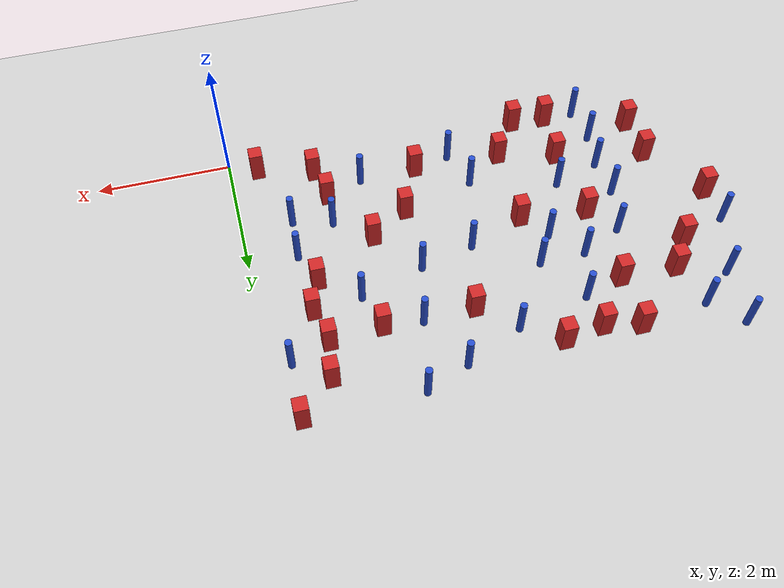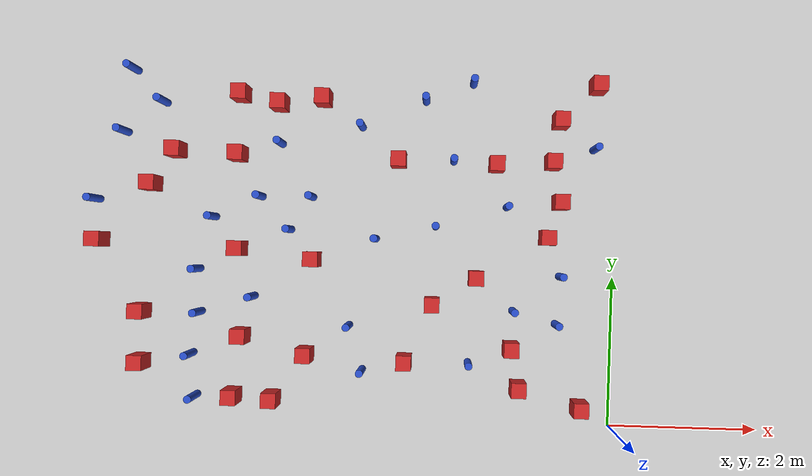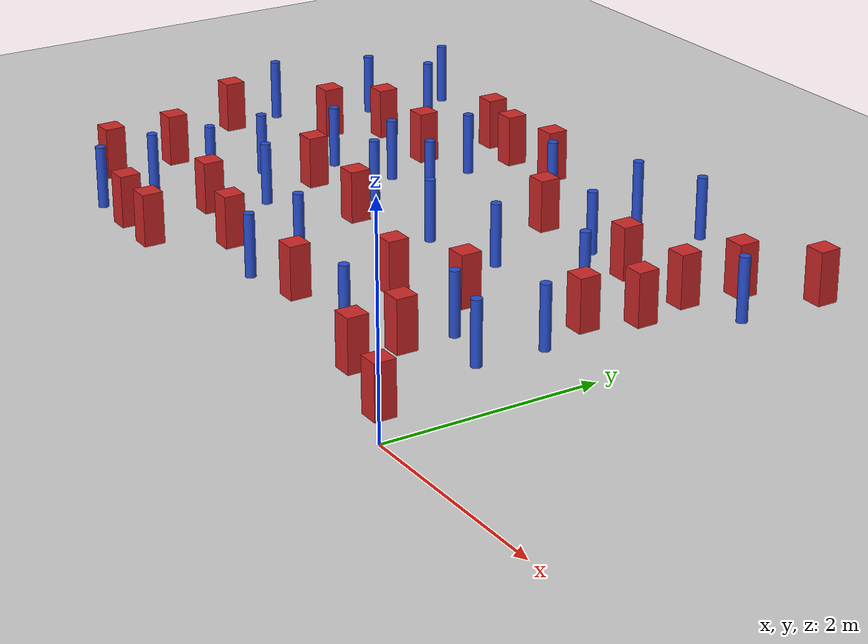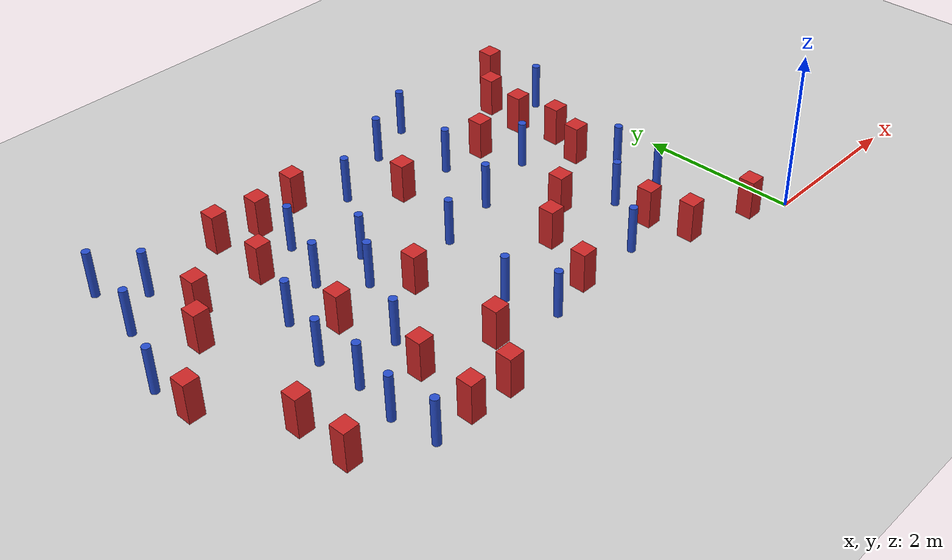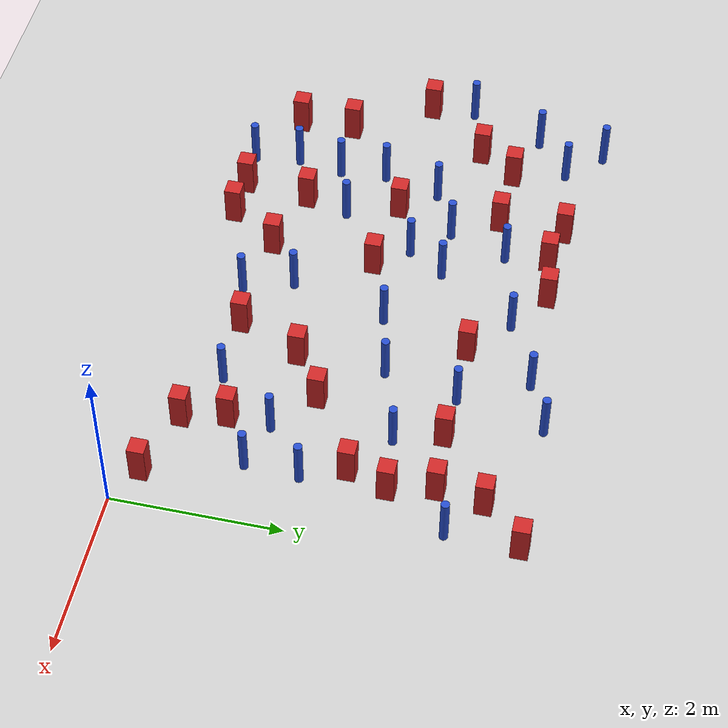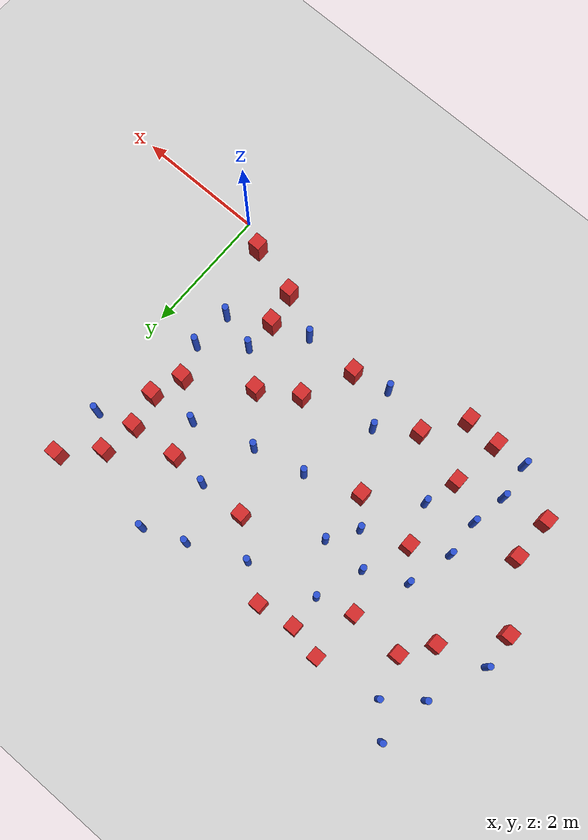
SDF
<sdf version="1.6">
 <world name="default">
  <model name="ground_plane">
   <static>1</static>
   <link name="link">
    <collision name="collision">
     <geometry><plane><normal>0 0 1</normal><size>100 100</size></plane></geometry>
     <surface><friction><ode><mu>100</mu><mu2>50</mu2></ode></friction></surface>
    </collision>
    <visual name="visual">
     <cast_shadows>0</cast_shadows>
     <geometry><plane><normal>0 0 1</normal><size>100 100</size></plane></geometry>
     <material>
      <ambient>1.0 1.0 1.0 1.0</ambient>
      <diffuse>0.8 0.8 0.8 1.0</diffuse>
      <specular>0.01 0.01 0.01 1.000000</specular>
     </material>
    </visual>
   </link>
  </model>
  <model name="pole_obstacle3">
   <static>true</static>
   <pose>-5.56863319645 0.264649890705 7.38925637345e-09 -8.47170692799e-08 1.24976765028e-08 -1.74513093019e-07</pose>
   <link name="link">
    <pose>0 0 0.3 0 -0 0</pose>
    <inertial>
     <mass>1</mass>
     <inertia><ixx>0.145833</ixx><ixy>0</ixy><ixz>0</ixz><iyy>0.145833</iyy><iyz>0</iyz><izz>0.125</izz></inertia>
    </inertial>
    <collision name="collision">
     <geometry><cylinder><radius>0.05</radius><length>.6</length></cylinder></geometry>
    </collision>
    <visual name="visual">
     <geometry><cylinder><radius>0.05</radius><length>.6</length></cylinder></geometry>
     <material>
      <script><name>Gazebo/Blue</name><uri>file://media/materials/scripts/gazebo.material</uri></script>
     </material>
    </visual>
   </link>
  </model>
  <model name="pole_obstacle4">
   <static>true</static>
   <pose>-1.33974856202 1.51738444277 7.38925637345e-09 -8.471706928e-08 1.24976765079e-08 -1.74513093017e-07</pose>
   <link name="link">
    <pose>0 0 0.3 0 -0 0</pose>
    <inertial>
     <mass>1</mass>
     <inertia><ixx>0.145833</ixx><ixy>0</ixy><ixz>0</ixz><iyy>0.145833</iyy><iyz>0</iyz><izz>0.125</izz></inertia>
    </inertial>
    <collision name="collision">
     <geometry><cylinder><radius>0.05</radius><length>.6</length></cylinder></geometry>
    </collision>
    <visual name="visual">
     <geometry><cylinder><radius>0.05</radius><length>.6</length></cylinder></geometry>
     <material>
      <script><name>Gazebo/Blue</name><uri>file://media/materials/scripts/gazebo.material</uri></script>
     </material>
    </visual>
   </link>
  </model>
  <model name="square_post_obstacle7">
   <static>true</static>
   <pose>-2.42755309524 1.5770509396 1.91545236811e-07 -7.35059704564e-06 1.12565212e-07 2.39332434364e-05</pose>
   <link name="link">
    <pose>0 0 0.25 0 -0 0</pose>
    <inertial>
     <mass>100</mass>
     <inertia>
      <ixx>0.166667</ixx>
      <ixy>0</ixy>
      <ixz>0</ixz>
      <iyy>0.166667</iyy>
      <iyz>0</iyz>
      <izz>0.166667</izz>
     </inertia>
    </inertial>
    <collision name="collision"><geometry><box><size>.2 .2 .5</size></box></geometry></collision>
    <visual name="visual">
     <geometry><box><size>.2 .2 .5</size></box></geometry>
     <material>
      <script><name>Gazebo/Red</name><uri>file://media/materials/scripts/gazebo.material</uri></script>
     </material>
    </visual>
   </link>
  </model>
  <model name="pole_obstacle13">
   <static>true</static>
   <pose>-6.49323973587 4.6111920208 7.38925637345e-09 -8.47170692796e-08 1.24976764786e-08 -1.74513093032e-07</pose>
   <link name="link">
    <pose>0 0 0.3 0 -0 0</pose>
    <inertial>
     <mass>1</mass>
     <inertia><ixx>0.145833</ixx><ixy>0</ixy><ixz>0</ixz><iyy>0.145833</iyy><iyz>0</iyz><izz>0.125</izz></inertia>
    </inertial>
    <collision name="collision">
     <geometry><cylinder><radius>0.05</radius><length>.6</length></cylinder></geometry>
    </collision>
    <visual name="visual">
     <geometry><cylinder><radius>0.05</radius><length>.6</length></cylinder></geometry>
     <material>
      <script><name>Gazebo/Blue</name><uri>file://media/materials/scripts/gazebo.material</uri></script>
     </material>
    </visual>
   </link>
  </model>
  <model name="square_post_obstacle12">
   <static>true</static>
   <pose>-2.92349941029 3.49321130569 1.91545236811e-07 -7.35059704564e-06 1.12565212e-07 2.39332434364e-05</pose>
   <link name="link">
    <pose>0 0 0.25 0 -0 0</pose>
    <inertial>
     <mass>100</mass>
     <inertia>
      <ixx>0.166667</ixx>
      <ixy>0</ixy>
      <ixz>0</ixz>
      <iyy>0.166667</iyy>
      <iyz>0</iyz>
      <izz>0.166667</izz>
     </inertia>
    </inertial>
    <collision name="collision"><geometry><box><size>.2 .2 .5</size></box></geometry></collision>
    <visual name="visual">
     <geometry><box><size>.2 .2 .5</size></box></geometry>
     <material>
      <script><name>Gazebo/Red</name><uri>file://media/materials/scripts/gazebo.material</uri></script>
     </material>
    </visual>
   </link>
  </model>
  <model name="pole_obstacle17">
   <static>true</static>
   <pose>-2.18803937398 3.50886548616 7.38925637345e-09 -8.47170692798e-08 1.24976764939e-08 -1.74513093025e-07</pose>
   <link name="link">
    <pose>0 0 0.3 0 -0 0</pose>
    <inertial>
     <mass>1</mass>
     <inertia><ixx>0.145833</ixx><ixy>0</ixy><ixz>0</ixz><iyy>0.145833</iyy><iyz>0</iyz><izz>0.125</izz></inertia>
    </inertial>
    <collision name="collision">
     <geometry><cylinder><radius>0.05</radius><length>.6</length></cylinder></geometry>
    </collision>
    <visual name="visual">
     <geometry><cylinder><radius>0.05</radius><length>.6</length></cylinder></geometry>
     <material>
      <script><name>Gazebo/Blue</name><uri>file://media/materials/scripts/gazebo.material</uri></script>
     </material>
    </visual>
   </link>
  </model>
  <model name="pole_obstacle20">
   <static>true</static>
   <pose>-2.58175912046 4.30613120905 7.38925637345e-09 -8.47170692798e-08 1.24976765033e-08 -1.74513093019e-07</pose>
   <link name="link">
    <pose>0 0 0.3 0 -0 0</pose>
    <inertial>
     <mass>1</mass>
     <inertia><ixx>0.145833</ixx><ixy>0</ixy><ixz>0</ixz><iyy>0.145833</iyy><iyz>0</iyz><izz>0.125</izz></inertia>
    </inertial>
    <collision name="collision">
     <geometry><cylinder><radius>0.05</radius><length>.6</length></cylinder></geometry>
    </collision>
    <visual name="visual">
     <geometry><cylinder><radius>0.05</radius><length>.6</length></cylinder></geometry>
     <material>
      <script><name>Gazebo/Blue</name><uri>file://media/materials/scripts/gazebo.material</uri></script>
     </material>
    </visual>
   </link>
  </model>
  <model name="pole_obstacle30">
   <static>true</static>
   <pose>-5.38350542425 2.66829200879 7.38925637345e-09 -8.47170692798e-08 1.24976764937e-08 -1.74513093023e-07</pose>
   <link name="link">
    <pose>0 0 0.3 0 -0 0</pose>
    <inertial>
     <mass>1</mass>
     <inertia><ixx>0.145833</ixx><ixy>0</ixy><ixz>0</ixz><iyy>0.145833</iyy><iyz>0</iyz><izz>0.125</izz></inertia>
    </inertial>
    <collision name="collision">
     <geometry><cylinder><radius>0.05</radius><length>.6</length></cylinder></geometry>
    </collision>
    <visual name="visual">
     <geometry><cylinder><radius>0.05</radius><length>.6</length></cylinder></geometry>
     <material>
      <script><name>Gazebo/Blue</name><uri>file://media/materials/scripts/gazebo.material</uri></script>
     </material>
    </visual>
   </link>
  </model>
  <model name="square_post_obstacle25">
   <static>true</static>
   <pose>-4.10507552067 0.86346318262 1.91545236811e-07 -7.35059704564e-06 1.12565212e-07 2.39332434364e-05</pose>
   <link name="link">
    <pose>0 0 0.25 0 -0 0</pose>
    <inertial>
     <mass>100</mass>
     <inertia>
      <ixx>0.166667</ixx>
      <ixy>0</ixy>
      <ixz>0</ixz>
      <iyy>0.166667</iyy>
      <iyz>0</iyz>
      <izz>0.166667</izz>
     </inertia>
    </inertial>
    <collision name="collision"><geometry><box><size>.2 .2 .5</size></box></geometry></collision>
    <visual name="visual">
     <geometry><box><size>.2 .2 .5</size></box></geometry>
     <material>
      <script><name>Gazebo/Red</name><uri>file://media/materials/scripts/gazebo.material</uri></script>
     </material>
    </visual>
   </link>
  </model>
  <model name="square_post_obstacle26">
   <static>true</static>
   <pose>-0.776576983941 4.07761390793 1.91545236811e-07 -7.35059704564e-06 1.12565212e-07 2.39332434364e-05</pose>
   <link name="link">
    <pose>0 0 0.25 0 -0 0</pose>
    <inertial>
     <mass>100</mass>
     <inertia>
      <ixx>0.166667</ixx>
      <ixy>0</ixy>
      <ixz>0</ixz>
      <iyy>0.166667</iyy>
      <iyz>0</iyz>
      <izz>0.166667</izz>
     </inertia>
    </inertial>
    <collision name="collision"><geometry><box><size>.2 .2 .5</size></box></geometry></collision>
    <visual name="visual">
     <geometry><box><size>.2 .2 .5</size></box></geometry>
     <material>
      <script><name>Gazebo/Red</name><uri>file://media/materials/scripts/gazebo.material</uri></script>
     </material>
    </visual>
   </link>
  </model>
  <model name="pole_obstacle34">
   <static>true</static>
   <pose>-1.45601798842 2.90968524978 7.38925637345e-09 -8.47170692799e-08 1.24976765053e-08 -1.74513093017e-07</pose>
   <link name="link">
    <pose>0 0 0.3 0 -0 0</pose>
    <inertial>
     <mass>1</mass>
     <inertia><ixx>0.145833</ixx><ixy>0</ixy><ixz>0</ixz><iyy>0.145833</iyy><iyz>0</iyz><izz>0.125</izz></inertia>
    </inertial>
    <collision name="collision">
     <geometry><cylinder><radius>0.05</radius><length>.6</length></cylinder></geometry>
    </collision>
    <visual name="visual">
     <geometry><cylinder><radius>0.05</radius><length>.6</length></cylinder></geometry>
     <material>
      <script><name>Gazebo/Blue</name><uri>file://media/materials/scripts/gazebo.material</uri></script>
     </material>
    </visual>
   </link>
  </model>
  <model name="square_post_obstacle29">
   <static>true</static>
   <pose>-6.31214828263 0.705126286664 1.91545236811e-07 -7.35059704564e-06 1.12565212e-07 2.39332434364e-05</pose>
   <link name="link">
    <pose>0 0 0.25 0 -0 0</pose>
    <inertial>
     <mass>100</mass>
     <inertia>
      <ixx>0.166667</ixx>
      <ixy>0</ixy>
      <ixz>0</ixz>
      <iyy>0.166667</iyy>
      <iyz>0</iyz>
      <izz>0.166667</izz>
     </inertia>
    </inertial>
    <collision name="collision"><geometry><box><size>.2 .2 .5</size></box></geometry></collision>
    <visual name="visual">
     <geometry><box><size>.2 .2 .5</size></box></geometry>
     <material>
      <script><name>Gazebo/Red</name><uri>file://media/materials/scripts/gazebo.material</uri></script>
     </material>
    </visual>
   </link>
  </model>
  <model name="pole_obstacle35">
   <static>true</static>
   <pose>-4.76071963337 2.95807775296 7.38925637345e-09 -8.47170692798e-08 1.24976764937e-08 -1.74513093023e-07</pose>
   <link name="link">
    <pose>0 0 0.3 0 -0 0</pose>
    <inertial>
     <mass>1</mass>
     <inertia><ixx>0.145833</ixx><ixy>0</ixy><ixz>0</ixz><iyy>0.145833</iyy><iyz>0</iyz><izz>0.125</izz></inertia>
    </inertial>
    <collision name="collision">
     <geometry><cylinder><radius>0.05</radius><length>.6</length></cylinder></geometry>
    </collision>
    <visual name="visual">
     <geometry><cylinder><radius>0.05</radius><length>.6</length></cylinder></geometry>
     <material>
      <script><name>Gazebo/Blue</name><uri>file://media/materials/scripts/gazebo.material</uri></script>
     </material>
    </visual>
   </link>
  </model>
  <model name="pole_obstacle43">
   <static>true</static>
   <pose>-1.9512212607 4.55714474681 7.38925637345e-09 -8.47170692799e-08 1.2497676507e-08 -1.74513093016e-07</pose>
   <link name="link">
    <pose>0 0 0.3 0 -0 0</pose>
    <inertial>
     <mass>1</mass>
     <inertia><ixx>0.145833</ixx><ixy>0</ixy><ixz>0</ixz><iyy>0.145833</iyy><iyz>0</iyz><izz>0.125</izz></inertia>
    </inertial>
    <collision name="collision">
     <geometry><cylinder><radius>0.05</radius><length>.6</length></cylinder></geometry>
    </collision>
    <visual name="visual">
     <geometry><cylinder><radius>0.05</radius><length>.6</length></cylinder></geometry>
     <material>
      <script><name>Gazebo/Blue</name><uri>file://media/materials/scripts/gazebo.material</uri></script>
     </material>
    </visual>
   </link>
  </model>
  <model name="pole_obstacle44">
   <static>true</static>
   <pose>-6.96015994865 2.86107015724 7.38925637345e-09 -8.47170692798e-08 1.24976764937e-08 -1.74513093023e-07</pose>
   <link name="link">
    <pose>0 0 0.3 0 -0 0</pose>
    <inertial>
     <mass>1</mass>
     <inertia><ixx>0.145833</ixx><ixy>0</ixy><ixz>0</ixz><iyy>0.145833</iyy><iyz>0</iyz><izz>0.125</izz></inertia>
    </inertial>
    <collision name="collision">
     <geometry><cylinder><radius>0.05</radius><length>.6</length></cylinder></geometry>
    </collision>
    <visual name="visual">
     <geometry><cylinder><radius>0.05</radius><length>.6</length></cylinder></geometry>
     <material>
      <script><name>Gazebo/Blue</name><uri>file://media/materials/scripts/gazebo.material</uri></script>
     </material>
    </visual>
   </link>
  </model>
  <model name="square_post_obstacle37">
   <static>true</static>
   <pose>-5.90114553127 3.54350810427 1.91545236811e-07 -7.35059704564e-06 1.12565212e-07 2.39332434364e-05</pose>
   <link name="link">
    <pose>0 0 0.25 0 -0 0</pose>
    <inertial>
     <mass>100</mass>
     <inertia>
      <ixx>0.166667</ixx>
      <ixy>0</ixy>
      <ixz>0</ixz>
      <iyy>0.166667</iyy>
      <iyz>0</iyz>
      <izz>0.166667</izz>
     </inertia>
    </inertial>
    <collision name="collision"><geometry><box><size>.2 .2 .5</size></box></geometry></collision>
    <visual name="visual">
     <geometry><box><size>.2 .2 .5</size></box></geometry>
     <material>
      <script><name>Gazebo/Red</name><uri>file://media/materials/scripts/gazebo.material</uri></script>
     </material>
    </visual>
   </link>
  </model>
  <model name="square_post_obstacle38">
   <static>true</static>
   <pose>-4.04228116823 2.13483745401 1.91545236811e-07 -7.35059704564e-06 1.12565212e-07 2.39332434364e-05</pose>
   <link name="link">
    <pose>0 0 0.25 0 -0 0</pose>
    <inertial>
     <mass>100</mass>
     <inertia>
      <ixx>0.166667</ixx>
      <ixy>0</ixy>
      <ixz>0</ixz>
      <iyy>0.166667</iyy>
      <iyz>0</iyz>
      <izz>0.166667</izz>
     </inertia>
    </inertial>
    <collision name="collision"><geometry><box><size>.2 .2 .5</size></box></geometry></collision>
    <visual name="visual">
     <geometry><box><size>.2 .2 .5</size></box></geometry>
     <material>
      <script><name>Gazebo/Red</name><uri>file://media/materials/scripts/gazebo.material</uri></script>
     </material>
    </visual>
   </link>
  </model>
  <model name="pole_obstacle51">
   <static>true</static>
   <pose>-4.07590092681 2.9698948644 7.38925637345e-09 -8.47170692798e-08 1.24976764937e-08 -1.74513093023e-07</pose>
   <link name="link">
    <pose>0 0 0.3 0 -0 0</pose>
    <inertial>
     <mass>1</mass>
     <inertia><ixx>0.145833</ixx><ixy>0</ixy><ixz>0</ixz><iyy>0.145833</iyy><iyz>0</iyz><izz>0.125</izz></inertia>
    </inertial>
    <collision name="collision">
     <geometry><cylinder><radius>0.05</radius><length>.6</length></cylinder></geometry>
    </collision>
    <visual name="visual">
     <geometry><cylinder><radius>0.05</radius><length>.6</length></cylinder></geometry>
     <material>
      <script><name>Gazebo/Blue</name><uri>file://media/materials/scripts/gazebo.material</uri></script>
     </material>
    </visual>
   </link>
  </model>
  <model name="square_post_obstacle43">
   <static>true</static>
   <pose>-1.85019754878 1.94589696726 1.91545236811e-07 -7.35059704564e-06 1.12565212e-07 2.39332434364e-05</pose>
   <link name="link">
    <pose>0 0 0.25 0 -0 0</pose>
    <inertial>
     <mass>100</mass>
     <inertia>
      <ixx>0.166667</ixx>
      <ixy>0</ixy>
      <ixz>0</ixz>
      <iyy>0.166667</iyy>
      <iyz>0</iyz>
      <izz>0.166667</izz>
     </inertia>
    </inertial>
    <collision name="collision"><geometry><box><size>.2 .2 .5</size></box></geometry></collision>
    <visual name="visual">
     <geometry><box><size>.2 .2 .5</size></box></geometry>
     <material>
      <script><name>Gazebo/Red</name><uri>file://media/materials/scripts/gazebo.material</uri></script>
     </material>
    </visual>
   </link>
  </model>
  <model name="square_post_obstacle44">
   <static>true</static>
   <pose>-6.3223014532 1.3805260691 1.91545236811e-07 -7.35059704564e-06 1.12565212e-07 2.39332434364e-05</pose>
   <link name="link">
    <pose>0 0 0.25 0 -0 0</pose>
    <inertial>
     <mass>100</mass>
     <inertia>
      <ixx>0.166667</ixx>
      <ixy>0</ixy>
      <ixz>0</ixz>
      <iyy>0.166667</iyy>
      <iyz>0</iyz>
      <izz>0.166667</izz>
     </inertia>
    </inertial>
    <collision name="collision"><geometry><box><size>.2 .2 .5</size></box></geometry></collision>
    <visual name="visual">
     <geometry><box><size>.2 .2 .5</size></box></geometry>
     <material>
      <script><name>Gazebo/Red</name><uri>file://media/materials/scripts/gazebo.material</uri></script>
     </material>
    </visual>
   </link>
  </model>
  <model name="pole_obstacle59">
   <static>true</static>
   <pose>-5.63492754478 0.827320399171 7.38925637345e-09 -8.47170692799e-08 1.24976765038e-08 -1.74513093018e-07</pose>
   <link name="link">
    <pose>0 0 0.3 0 -0 0</pose>
    <inertial>
     <mass>1</mass>
     <inertia><ixx>0.145833</ixx><ixy>0</ixy><ixz>0</ixz><iyy>0.145833</iyy><iyz>0</iyz><izz>0.125</izz></inertia>
    </inertial>
    <collision name="collision">
     <geometry><cylinder><radius>0.05</radius><length>.6</length></cylinder></geometry>
    </collision>
    <visual name="visual">
     <geometry><cylinder><radius>0.05</radius><length>.6</length></cylinder></geometry>
     <material>
      <script><name>Gazebo/Blue</name><uri>file://media/materials/scripts/gazebo.material</uri></script>
     </material>
    </visual>
   </link>
  </model>
  <model name="square_post_obstacle46">
   <static>true</static>
   <pose>-4.97036608837 1.09026584911 1.91545236811e-07 -7.35059704564e-06 1.12565212e-07 2.39332434364e-05</pose>
   <link name="link">
    <pose>0 0 0.25 0 -0 0</pose>
    <inertial>
     <mass>100</mass>
     <inertia>
      <ixx>0.166667</ixx>
      <ixy>0</ixy>
      <ixz>0</ixz>
      <iyy>0.166667</iyy>
      <iyz>0</iyz>
      <izz>0.166667</izz>
     </inertia>
    </inertial>
    <collision name="collision"><geometry><box><size>.2 .2 .5</size></box></geometry></collision>
    <visual name="visual">
     <geometry><box><size>.2 .2 .5</size></box></geometry>
     <material>
      <script><name>Gazebo/Red</name><uri>file://media/materials/scripts/gazebo.material</uri></script>
     </material>
    </visual>
   </link>
  </model>
  <model name="square_post_obstacle48">
   <static>true</static>
   <pose>-0.74768608208 2.98971172922 1.91545236811e-07 -7.35059704564e-06 1.12565212e-07 2.39332434364e-05</pose>
   <link name="link">
    <pose>0 0 0.25 0 -0 0</pose>
    <inertial>
     <mass>100</mass>
     <inertia>
      <ixx>0.166667</ixx>
      <ixy>0</ixy>
      <ixz>0</ixz>
      <iyy>0.166667</iyy>
      <iyz>0</iyz>
      <izz>0.166667</izz>
     </inertia>
    </inertial>
    <collision name="collision"><geometry><box><size>.2 .2 .5</size></box></geometry></collision>
    <visual name="visual">
     <geometry><box><size>.2 .2 .5</size></box></geometry>
     <material>
      <script><name>Gazebo/Red</name><uri>file://media/materials/scripts/gazebo.material</uri></script>
     </material>
    </visual>
   </link>
  </model>
  <model name="square_post_obstacle57">
   <static>true</static>
   <pose>-3.95077876978 4.28732311534 1.91545236811e-07 -7.35059704564e-06 1.12565212e-07 2.39332434364e-05</pose>
   <link name="link">
    <pose>0 0 0.25 0 -0 0</pose>
    <inertial>
     <mass>100</mass>
     <inertia>
      <ixx>0.166667</ixx>
      <ixy>0</ixy>
      <ixz>0</ixz>
      <iyy>0.166667</iyy>
      <iyz>0</iyz>
      <izz>0.166667</izz>
     </inertia>
    </inertial>
    <collision name="collision"><geometry><box><size>.2 .2 .5</size></box></geometry></collision>
    <visual name="visual">
     <geometry><box><size>.2 .2 .5</size></box></geometry>
     <material>
      <script><name>Gazebo/Red</name><uri>file://media/materials/scripts/gazebo.material</uri></script>
     </material>
    </visual>
   </link>
  </model>
  <model name="square_post_obstacle58">
   <static>true</static>
   <pose>-6.91479746535 2.32026566098 1.91545236811e-07 -7.35059704564e-06 1.12565212e-07 2.39332434364e-05</pose>
   <link name="link">
    <pose>0 0 0.25 0 -0 0</pose>
    <inertial>
     <mass>100</mass>
     <inertia>
      <ixx>0.166667</ixx>
      <ixy>0</ixy>
      <ixz>0</ixz>
      <iyy>0.166667</iyy>
      <iyz>0</iyz>
      <izz>0.166667</izz>
     </inertia>
    </inertial>
    <collision name="collision"><geometry><box><size>.2 .2 .5</size></box></geometry></collision>
    <visual name="visual">
     <geometry><box><size>.2 .2 .5</size></box></geometry>
     <material>
      <script><name>Gazebo/Red</name><uri>file://media/materials/scripts/gazebo.material</uri></script>
     </material>
    </visual>
   </link>
  </model>
  <model name="square_post_obstacle67">
   <static>true</static>
   <pose>-5.07187624802 3.5150816667 1.91545236811e-07 -7.35059704564e-06 1.12565212e-07 2.39332434364e-05</pose>
   <link name="link">
    <pose>0 0 0.25 0 -0 0</pose>
    <inertial>
     <mass>100</mass>
     <inertia>
      <ixx>0.166667</ixx>
      <ixy>0</ixy>
      <ixz>0</ixz>
      <iyy>0.166667</iyy>
      <iyz>0</iyz>
      <izz>0.166667</izz>
     </inertia>
    </inertial>
    <collision name="collision"><geometry><box><size>.2 .2 .5</size></box></geometry></collision>
    <visual name="visual">
     <geometry><box><size>.2 .2 .5</size></box></geometry>
     <material>
      <script><name>Gazebo/Red</name><uri>file://media/materials/scripts/gazebo.material</uri></script>
     </material>
    </visual>
   </link>
  </model>
  <model name="pole_obstacle90">
   <static>true</static>
   <pose>-1.92301351169 0.804277605014 7.38925637345e-09 -8.47170692799e-08 1.24976765075e-08 -1.74513093017e-07</pose>
   <link name="link">
    <pose>0 0 0.3 0 -0 0</pose>
    <inertial>
     <mass>1</mass>
     <inertia><ixx>0.145833</ixx><ixy>0</ixy><ixz>0</ixz><iyy>0.145833</iyy><iyz>0</iyz><izz>0.125</izz></inertia>
    </inertial>
    <collision name="collision">
     <geometry><cylinder><radius>0.05</radius><length>.6</length></cylinder></geometry>
    </collision>
    <visual name="visual">
     <geometry><cylinder><radius>0.05</radius><length>.6</length></cylinder></geometry>
     <material>
      <script><name>Gazebo/Blue</name><uri>file://media/materials/scripts/gazebo.material</uri></script>
     </material>
    </visual>
   </link>
  </model>
  <model name="square_post_obstacle89">
   <static>true</static>
   <pose>-4.5321779755 4.20644288761 1.91545236811e-07 -7.35059704564e-06 1.12565212e-07 2.39332434364e-05</pose>
   <link name="link">
    <pose>0 0 0.25 0 -0 0</pose>
    <inertial>
     <mass>100</mass>
     <inertia>
      <ixx>0.166667</ixx>
      <ixy>0</ixy>
      <ixz>0</ixz>
      <iyy>0.166667</iyy>
      <iyz>0</iyz>
      <izz>0.166667</izz>
     </inertia>
    </inertial>
    <collision name="collision"><geometry><box><size>.2 .2 .5</size></box></geometry></collision>
    <visual name="visual">
     <geometry><box><size>.2 .2 .5</size></box></geometry>
     <material>
      <script><name>Gazebo/Red</name><uri>file://media/materials/scripts/gazebo.material</uri></script>
     </material>
    </visual>
   </link>
  </model>
  <model name="pole_obstacle104">
   <static>true</static>
   <pose>-5.57584158624 1.9653769856 7.38925637345e-09 -8.471706928e-08 1.24976765177e-08 -1.74513093012e-07</pose>
   <link name="link">
    <pose>0 0 0.3 0 -0 0</pose>
    <inertial>
     <mass>1</mass>
     <inertia><ixx>0.145833</ixx><ixy>0</ixy><ixz>0</ixz><iyy>0.145833</iyy><iyz>0</iyz><izz>0.125</izz></inertia>
    </inertial>
    <collision name="collision">
     <geometry><cylinder><radius>0.05</radius><length>.6</length></cylinder></geometry>
    </collision>
    <visual name="visual">
     <geometry><cylinder><radius>0.05</radius><length>.6</length></cylinder></geometry>
     <material>
      <script><name>Gazebo/Blue</name><uri>file://media/materials/scripts/gazebo.material</uri></script>
     </material>
    </visual>
   </link>
  </model>
  <model name="square_post_obstacle100">
   <static>true</static>
   <pose>-5.04311848189 2.25108988456 1.91545236811e-07 -7.35059704564e-06 1.12565212e-07 2.39332434364e-05</pose>
   <link name="link">
    <pose>0 0 0.25 0 -0 0</pose>
    <inertial>
     <mass>100</mass>
     <inertia>
      <ixx>0.166667</ixx>
      <ixy>0</ixy>
      <ixz>0</ixz>
      <iyy>0.166667</iyy>
      <iyz>0</iyz>
      <izz>0.166667</izz>
     </inertia>
    </inertial>
    <collision name="collision"><geometry><box><size>.2 .2 .5</size></box></geometry></collision>
    <visual name="visual">
     <geometry><box><size>.2 .2 .5</size></box></geometry>
     <material>
      <script><name>Gazebo/Red</name><uri>file://media/materials/scripts/gazebo.material</uri></script>
     </material>
    </visual>
   </link>
  </model>
  <model name="square_post_obstacle109">
   <static>true</static>
   <pose>-5.06477665725 0.285330930517 1.91545236811e-07 -7.35059704564e-06 1.12565212e-07 2.39332434364e-05</pose>
   <link name="link">
    <pose>0 0 0.25 0 -0 0</pose>
    <inertial>
     <mass>100</mass>
     <inertia>
      <ixx>0.166667</ixx>
      <ixy>0</ixy>
      <ixz>0</ixz>
      <iyy>0.166667</iyy>
      <iyz>0</iyz>
      <izz>0.166667</izz>
     </inertia>
    </inertial>
    <collision name="collision"><geometry><box><size>.2 .2 .5</size></box></geometry></collision>
    <visual name="visual">
     <geometry><box><size>.2 .2 .5</size></box></geometry>
     <material>
      <script><name>Gazebo/Red</name><uri>file://media/materials/scripts/gazebo.material</uri></script>
     </material>
    </visual>
   </link>
  </model>
  <model name="pole_obstacle113">
   <static>true</static>
   <pose>-0.720017553304 1.9987558391 7.38925637345e-09 -8.47170692799e-08 1.24976765066e-08 -1.74513093016e-07</pose>
   <link name="link">
    <pose>0 0 0.3 0 -0 0</pose>
    <inertial>
     <mass>1</mass>
     <inertia><ixx>0.145833</ixx><ixy>0</ixy><ixz>0</ixz><iyy>0.145833</iyy><iyz>0</iyz><izz>0.125</izz></inertia>
    </inertial>
    <collision name="collision">
     <geometry><cylinder><radius>0.05</radius><length>.6</length></cylinder></geometry>
    </collision>
    <visual name="visual">
     <geometry><cylinder><radius>0.05</radius><length>.6</length></cylinder></geometry>
     <material>
      <script><name>Gazebo/Blue</name><uri>file://media/materials/scripts/gazebo.material</uri></script>
     </material>
    </visual>
   </link>
  </model>
  <model name="square_post_obstacle118">
   <static>true</static>
   <pose>-4.53741204702 0.261080370411 1.91545236811e-07 -7.35059704564e-06 1.12565212e-07 2.39332434364e-05</pose>
   <link name="link">
    <pose>0 0 0.25 0 -0 0</pose>
    <inertial>
     <mass>100</mass>
     <inertia>
      <ixx>0.166667</ixx>
      <ixy>0</ixy>
      <ixz>0</ixz>
      <iyy>0.166667</iyy>
      <iyz>0</iyz>
      <izz>0.166667</izz>
     </inertia>
    </inertial>
    <collision name="collision"><geometry><box><size>.2 .2 .5</size></box></geometry></collision>
    <visual name="visual">
     <geometry><box><size>.2 .2 .5</size></box></geometry>
     <material>
      <script><name>Gazebo/Red</name><uri>file://media/materials/scripts/gazebo.material</uri></script>
     </material>
    </visual>
   </link>
  </model>
  <model name="square_post_obstacle120">
   <static>true</static>
   <pose>-1.61638183362 3.4714998487 1.91545236811e-07 -7.35059704564e-06 1.12565212e-07 2.39332434364e-05</pose>
   <link name="link">
    <pose>0 0 0.25 0 -0 0</pose>
    <inertial>
     <mass>100</mass>
     <inertia>
      <ixx>0.166667</ixx>
      <ixy>0</ixy>
      <ixz>0</ixz>
      <iyy>0.166667</iyy>
      <iyz>0</iyz>
      <izz>0.166667</izz>
     </inertia>
    </inertial>
    <collision name="collision"><geometry><box><size>.2 .2 .5</size></box></geometry></collision>
    <visual name="visual">
     <geometry><box><size>.2 .2 .5</size></box></geometry>
     <material>
      <script><name>Gazebo/Red</name><uri>file://media/materials/scripts/gazebo.material</uri></script>
     </material>
    </visual>
   </link>
  </model>
  <model name="pole_obstacle125">
   <static>true</static>
   <pose>-5.53909171202 1.38872969168 7.38925637345e-09 -8.471706928e-08 1.24976765134e-08 -1.74513093015e-07</pose>
   <link name="link">
    <pose>0 0 0.3 0 -0 0</pose>
    <inertial>
     <mass>1</mass>
     <inertia><ixx>0.145833</ixx><ixy>0</ixy><ixz>0</ixz><iyy>0.145833</iyy><iyz>0</iyz><izz>0.125</izz></inertia>
    </inertial>
    <collision name="collision">
     <geometry><cylinder><radius>0.05</radius><length>.6</length></cylinder></geometry>
    </collision>
    <visual name="visual">
     <geometry><cylinder><radius>0.05</radius><length>.6</length></cylinder></geometry>
     <material>
      <script><name>Gazebo/Blue</name><uri>file://media/materials/scripts/gazebo.material</uri></script>
     </material>
    </visual>
   </link>
  </model>
  <model name="square_post_obstacle123">
   <static>true</static>
   <pose>-0.911657201143 2.51197908286 1.91545236811e-07 -7.35059704564e-06 1.12565212e-07 2.39332434364e-05</pose>
   <link name="link">
    <pose>0 0 0.25 0 -0 0</pose>
    <inertial>
     <mass>100</mass>
     <inertia>
      <ixx>0.166667</ixx>
      <ixy>0</ixy>
      <ixz>0</ixz>
      <iyy>0.166667</iyy>
      <iyz>0</iyz>
      <izz>0.166667</izz>
     </inertia>
    </inertial>
    <collision name="collision"><geometry><box><size>.2 .2 .5</size></box></geometry></collision>
    <visual name="visual">
     <geometry><box><size>.2 .2 .5</size></box></geometry>
     <material>
      <script><name>Gazebo/Red</name><uri>file://media/materials/scripts/gazebo.material</uri></script>
     </material>
    </visual>
   </link>
  </model>
  <model name="pole_obstacle131">
   <static>true</static>
   <pose>-4.36003266942 2.52536859296 7.38925637345e-09 -8.47170692798e-08 1.24976764937e-08 -1.74513093023e-07</pose>
   <link name="link">
    <pose>0 0 0.3 0 -0 0</pose>
    <inertial>
     <mass>1</mass>
     <inertia><ixx>0.145833</ixx><ixy>0</ixy><ixz>0</ixz><iyy>0.145833</iyy><iyz>0</iyz><izz>0.125</izz></inertia>
    </inertial>
    <collision name="collision">
     <geometry><cylinder><radius>0.05</radius><length>.6</length></cylinder></geometry>
    </collision>
    <visual name="visual">
     <geometry><cylinder><radius>0.05</radius><length>.6</length></cylinder></geometry>
     <material>
      <script><name>Gazebo/Blue</name><uri>file://media/materials/scripts/gazebo.material</uri></script>
     </material>
    </visual>
   </link>
  </model>
  <model name="pole_obstacle136">
   <static>true</static>
   <pose>-4.50853572357 3.67686426055 7.38925637345e-09 -8.47170692798e-08 1.24976764937e-08 -1.74513093023e-07</pose>
   <link name="link">
    <pose>0 0 0.3 0 -0 0</pose>
    <inertial>
     <mass>1</mass>
     <inertia><ixx>0.145833</ixx><ixy>0</ixy><ixz>0</ixz><iyy>0.145833</iyy><iyz>0</iyz><izz>0.125</izz></inertia>
    </inertial>
    <collision name="collision">
     <geometry><cylinder><radius>0.05</radius><length>.6</length></cylinder></geometry>
    </collision>
    <visual name="visual">
     <geometry><cylinder><radius>0.05</radius><length>.6</length></cylinder></geometry>
     <material>
      <script><name>Gazebo/Blue</name><uri>file://media/materials/scripts/gazebo.material</uri></script>
     </material>
    </visual>
   </link>
  </model>
  <model name="square_post_obstacle134">
   <static>true</static>
   <pose>-1.36017640656 1.01450223764 1.91545236811e-07 -7.35059704564e-06 1.12565212e-07 2.39332434364e-05</pose>
   <link name="link">
    <pose>0 0 0.25 0 -0 0</pose>
    <inertial>
     <mass>100</mass>
     <inertia>
      <ixx>0.166667</ixx>
      <ixy>0</ixy>
      <ixz>0</ixz>
      <iyy>0.166667</iyy>
      <iyz>0</iyz>
      <izz>0.166667</izz>
     </inertia>
    </inertial>
    <collision name="collision"><geometry><box><size>.2 .2 .5</size></box></geometry></collision>
    <visual name="visual">
     <geometry><box><size>.2 .2 .5</size></box></geometry>
     <material>
      <script><name>Gazebo/Red</name><uri>file://media/materials/scripts/gazebo.material</uri></script>
     </material>
    </visual>
   </link>
  </model>
  <model name="pole_obstacle139">
   <static>true</static>
   <pose>-3.20894477367 2.43431515603 7.38925637345e-09 -8.471706928e-08 1.24976765098e-08 -1.74513093016e-07</pose>
   <link name="link">
    <pose>0 0 0.3 0 -0 0</pose>
    <inertial>
     <mass>1</mass>
     <inertia><ixx>0.145833</ixx><ixy>0</ixy><ixz>0</ixz><iyy>0.145833</iyy><iyz>0</iyz><izz>0.125</izz></inertia>
    </inertial>
    <collision name="collision">
     <geometry><cylinder><radius>0.05</radius><length>.6</length></cylinder></geometry>
    </collision>
    <visual name="visual">
     <geometry><cylinder><radius>0.05</radius><length>.6</length></cylinder></geometry>
     <material>
      <script><name>Gazebo/Blue</name><uri>file://media/materials/scripts/gazebo.material</uri></script>
     </material>
    </visual>
   </link>
  </model>
  <model name="square_post_obstacle137">
   <static>true</static>
   <pose>-0.289209760316 4.55991322727 1.91545236811e-07 -7.35059704564e-06 1.12565212e-07 2.39332434364e-05</pose>
   <link name="link">
    <pose>0 0 0.25 0 -0 0</pose>
    <inertial>
     <mass>100</mass>
     <inertia>
      <ixx>0.166667</ixx>
      <ixy>0</ixy>
      <ixz>0</ixz>
      <iyy>0.166667</iyy>
      <iyz>0</iyz>
      <izz>0.166667</izz>
     </inertia>
    </inertial>
    <collision name="collision"><geometry><box><size>.2 .2 .5</size></box></geometry></collision>
    <visual name="visual">
     <geometry><box><size>.2 .2 .5</size></box></geometry>
     <material>
      <script><name>Gazebo/Red</name><uri>file://media/materials/scripts/gazebo.material</uri></script>
     </material>
    </visual>
   </link>
  </model>
  <model name="pole_obstacle142">
   <static>true</static>
   <pose>-3.5371854778 1.25969981133 7.38925637345e-09 -8.47170692796e-08 1.24976764713e-08 -1.74513093037e-07</pose>
   <link name="link">
    <pose>0 0 0.3 0 -0 0</pose>
    <inertial>
     <mass>1</mass>
     <inertia><ixx>0.145833</ixx><ixy>0</ixy><ixz>0</ixz><iyy>0.145833</iyy><iyz>0</iyz><izz>0.125</izz></inertia>
    </inertial>
    <collision name="collision">
     <geometry><cylinder><radius>0.05</radius><length>.6</length></cylinder></geometry>
    </collision>
    <visual name="visual">
     <geometry><cylinder><radius>0.05</radius><length>.6</length></cylinder></geometry>
     <material>
      <script><name>Gazebo/Blue</name><uri>file://media/materials/scripts/gazebo.material</uri></script>
     </material>
    </visual>
   </link>
  </model>
  <model name="pole_obstacle143">
   <static>true</static>
   <pose>-2.40650761699 2.62157993166 7.38925637345e-09 -8.47170692798e-08 1.24976764939e-08 -1.74513093025e-07</pose>
   <link name="link">
    <pose>0 0 0.3 0 -0 0</pose>
    <inertial>
     <mass>1</mass>
     <inertia><ixx>0.145833</ixx><ixy>0</ixy><ixz>0</ixz><iyy>0.145833</iyy><iyz>0</iyz><izz>0.125</izz></inertia>
    </inertial>
    <collision name="collision">
     <geometry><cylinder><radius>0.05</radius><length>.6</length></cylinder></geometry>
    </collision>
    <visual name="visual">
     <geometry><cylinder><radius>0.05</radius><length>.6</length></cylinder></geometry>
     <material>
      <script><name>Gazebo/Blue</name><uri>file://media/materials/scripts/gazebo.material</uri></script>
     </material>
    </visual>
   </link>
  </model>
  <model name="pole_obstacle144">
   <static>true</static>
   <pose>-0.305935661957 3.71695276981 7.38925637345e-09 -8.471706928e-08 1.24976765084e-08 -1.74513093017e-07</pose>
   <link name="link">
    <pose>0 0 0.3 0 -0 0</pose>
    <inertial>
     <mass>1</mass>
     <inertia><ixx>0.145833</ixx><ixy>0</ixy><ixz>0</ixz><iyy>0.145833</iyy><iyz>0</iyz><izz>0.125</izz></inertia>
    </inertial>
    <collision name="collision">
     <geometry><cylinder><radius>0.05</radius><length>.6</length></cylinder></geometry>
    </collision>
    <visual name="visual">
     <geometry><cylinder><radius>0.05</radius><length>.6</length></cylinder></geometry>
     <material>
      <script><name>Gazebo/Blue</name><uri>file://media/materials/scripts/gazebo.material</uri></script>
     </material>
    </visual>
   </link>
  </model>
  <model name="pole_obstacle149">
   <static>true</static>
   <pose>-3.34641911192 0.667099022955 7.38925637345e-09 -8.471706928e-08 1.24976765177e-08 -1.74513093012e-07</pose>
   <link name="link">
    <pose>0 0 0.3 0 -0 0</pose>
    <inertial>
     <mass>1</mass>
     <inertia><ixx>0.145833</ixx><ixy>0</ixy><ixz>0</ixz><iyy>0.145833</iyy><iyz>0</iyz><izz>0.125</izz></inertia>
    </inertial>
    <collision name="collision">
     <geometry><cylinder><radius>0.05</radius><length>.6</length></cylinder></geometry>
    </collision>
    <visual name="visual">
     <geometry><cylinder><radius>0.05</radius><length>.6</length></cylinder></geometry>
     <material>
      <script><name>Gazebo/Blue</name><uri>file://media/materials/scripts/gazebo.material</uri></script>
     </material>
    </visual>
   </link>
  </model>
  <model name="square_post_obstacle142">
   <static>true</static>
   <pose>-5.05076855572 4.3175663388 1.91545236811e-07 -7.35059704564e-06 1.12565212e-07 2.39332434364e-05</pose>
   <link name="link">
    <pose>0 0 0.25 0 -0 0</pose>
    <inertial>
     <mass>100</mass>
     <inertia>
      <ixx>0.166667</ixx>
      <ixy>0</ixy>
      <ixz>0</ixz>
      <iyy>0.166667</iyy>
      <iyz>0</iyz>
      <izz>0.166667</izz>
     </inertia>
    </inertial>
    <collision name="collision"><geometry><box><size>.2 .2 .5</size></box></geometry></collision>
    <visual name="visual">
     <geometry><box><size>.2 .2 .5</size></box></geometry>
     <material>
      <script><name>Gazebo/Red</name><uri>file://media/materials/scripts/gazebo.material</uri></script>
     </material>
    </visual>
   </link>
  </model>
  <model name="pole_obstacle150">
   <static>true</static>
   <pose>-0.758344429277 1.35593110973 7.38925637345e-09 -8.47170692799e-08 1.24976765033e-08 -1.7451309302e-07</pose>
   <link name="link">
    <pose>0 0 0.3 0 -0 0</pose>
    <inertial>
     <mass>1</mass>
     <inertia><ixx>0.145833</ixx><ixy>0</ixy><ixz>0</ixz><iyy>0.145833</iyy><iyz>0</iyz><izz>0.125</izz></inertia>
    </inertial>
    <collision name="collision">
     <geometry><cylinder><radius>0.05</radius><length>.6</length></cylinder></geometry>
    </collision>
    <visual name="visual">
     <geometry><cylinder><radius>0.05</radius><length>.6</length></cylinder></geometry>
     <material>
      <script><name>Gazebo/Blue</name><uri>file://media/materials/scripts/gazebo.material</uri></script>
     </material>
    </visual>
   </link>
  </model>
  <model name="pole_obstacle152">
   <static>true</static>
   <pose>-6.60253523549 3.77498682139 7.38925637345e-09 -8.47170692798e-08 1.24976764937e-08 -1.74513093023e-07</pose>
   <link name="link">
    <pose>0 0 0.3 0 -0 0</pose>
    <inertial>
     <mass>1</mass>
     <inertia><ixx>0.145833</ixx><ixy>0</ixy><ixz>0</ixz><iyy>0.145833</iyy><iyz>0</iyz><izz>0.125</izz></inertia>
    </inertial>
    <collision name="collision">
     <geometry><cylinder><radius>0.05</radius><length>.6</length></cylinder></geometry>
    </collision>
    <visual name="visual">
     <geometry><cylinder><radius>0.05</radius><length>.6</length></cylinder></geometry>
     <material>
      <script><name>Gazebo/Blue</name><uri>file://media/materials/scripts/gazebo.material</uri></script>
     </material>
    </visual>
   </link>
  </model>
  <model name="pole_obstacle162">
   <static>true</static>
   <pose>-4.82858505873 1.61676083575 7.38925637345e-09 -8.471706928e-08 1.24976765134e-08 -1.74513093015e-07</pose>
   <link name="link">
    <pose>0 0 0.3 0 -0 0</pose>
    <inertial>
     <mass>1</mass>
     <inertia><ixx>0.145833</ixx><ixy>0</ixy><ixz>0</ixz><iyy>0.145833</iyy><iyz>0</iyz><izz>0.125</izz></inertia>
    </inertial>
    <collision name="collision">
     <geometry><cylinder><radius>0.05</radius><length>.6</length></cylinder></geometry>
    </collision>
    <visual name="visual">
     <geometry><cylinder><radius>0.05</radius><length>.6</length></cylinder></geometry>
     <material>
      <script><name>Gazebo/Blue</name><uri>file://media/materials/scripts/gazebo.material</uri></script>
     </material>
    </visual>
   </link>
  </model>
  <model name="pole_obstacle170">
   <static>true</static>
   <pose>-6.08725962298 4.187491415 7.38925637345e-09 -8.47170692796e-08 1.24976764786e-08 -1.74513093032e-07</pose>
   <link name="link">
    <pose>0 0 0.3 0 -0 0</pose>
    <inertial>
     <mass>1</mass>
     <inertia><ixx>0.145833</ixx><ixy>0</ixy><ixz>0</ixz><iyy>0.145833</iyy><iyz>0</iyz><izz>0.125</izz></inertia>
    </inertial>
    <collision name="collision">
     <geometry><cylinder><radius>0.05</radius><length>.6</length></cylinder></geometry>
    </collision>
    <visual name="visual">
     <geometry><cylinder><radius>0.05</radius><length>.6</length></cylinder></geometry>
     <material>
      <script><name>Gazebo/Blue</name><uri>file://media/materials/scripts/gazebo.material</uri></script>
     </material>
    </visual>
   </link>
  </model>
  <model name="square_post_obstacle174">
   <static>true</static>
   <pose>-0.422581109365 0.250924246577 1.91545236811e-07 -7.35059704564e-06 1.12565212e-07 2.39332434364e-05</pose>
   <link name="link">
    <pose>0 0 0.25 0 -0 0</pose>
    <inertial>
     <mass>100</mass>
     <inertia>
      <ixx>0.166667</ixx>
      <ixy>0</ixy>
      <ixz>0</ixz>
      <iyy>0.166667</iyy>
      <iyz>0</iyz>
      <izz>0.166667</izz>
     </inertia>
    </inertial>
    <collision name="collision"><geometry><box><size>.2 .2 .5</size></box></geometry></collision>
    <visual name="visual">
     <geometry><box><size>.2 .2 .5</size></box></geometry>
     <material>
      <script><name>Gazebo/Red</name><uri>file://media/materials/scripts/gazebo.material</uri></script>
     </material>
    </visual>
   </link>
  </model>
  <model name="square_post_obstacle176">
   <static>true</static>
   <pose>-2.77841386889 0.805640896748 1.91545236811e-07 -7.35059704564e-06 1.12565212e-07 2.39332434364e-05</pose>
   <link name="link">
    <pose>0 0 0.25 0 -0 0</pose>
    <inertial>
     <mass>100</mass>
     <inertia>
      <ixx>0.166667</ixx>
      <ixy>0</ixy>
      <ixz>0</ixz>
      <iyy>0.166667</iyy>
      <iyz>0</iyz>
      <izz>0.166667</izz>
     </inertia>
    </inertial>
    <collision name="collision"><geometry><box><size>.2 .2 .5</size></box></geometry></collision>
    <visual name="visual">
     <geometry><box><size>.2 .2 .5</size></box></geometry>
     <material>
      <script><name>Gazebo/Red</name><uri>file://media/materials/scripts/gazebo.material</uri></script>
     </material>
    </visual>
   </link>
  </model>
  <model name="square_post_obstacle197">
   <static>true</static>
   <pose>-1.25126409812 0.491178167752 1.91545236811e-07 -7.35059704564e-06 1.12565212e-07 2.39332434364e-05</pose>
   <link name="link">
    <pose>0 0 0.25 0 -0 0</pose>
    <inertial>
     <mass>100</mass>
     <inertia>
      <ixx>0.166667</ixx>
      <ixy>0</ixy>
      <ixz>0</ixz>
      <iyy>0.166667</iyy>
      <iyz>0</iyz>
      <izz>0.166667</izz>
     </inertia>
    </inertial>
    <collision name="collision"><geometry><box><size>.2 .2 .5</size></box></geometry></collision>
    <visual name="visual">
     <geometry><box><size>.2 .2 .5</size></box></geometry>
     <material>
      <script><name>Gazebo/Red</name><uri>file://media/materials/scripts/gazebo.material</uri></script>
     </material>
    </visual>
   </link>
  </model>
  <model name="square_post_obstacle199">
   <static>true</static>
   <pose>-6.22035811667 3.08742930992 1.91545236811e-07 -7.35059704564e-06 1.12565212e-07 2.39332434364e-05</pose>
   <link name="link">
    <pose>0 0 0.25 0 -0 0</pose>
    <inertial>
     <mass>100</mass>
     <inertia>
      <ixx>0.166667</ixx>
      <ixy>0</ixy>
      <ixz>0</ixz>
      <iyy>0.166667</iyy>
      <iyz>0</iyz>
      <izz>0.166667</izz>
     </inertia>
    </inertial>
    <collision name="collision"><geometry><box><size>.2 .2 .5</size></box></geometry></collision>
    <visual name="visual">
     <geometry><box><size>.2 .2 .5</size></box></geometry>
     <material>
      <script><name>Gazebo/Red</name><uri>file://media/materials/scripts/gazebo.material</uri></script>
     </material>
    </visual>
   </link>
  </model>
  <model name="pole_obstacle191">
   <static>true</static>
   <pose>-3.43188346748 3.9327161466 7.38925637345e-09 -8.47170692798e-08 1.24976764939e-08 -1.74513093025e-07</pose>
   <link name="link">
    <pose>0 0 0.3 0 -0 0</pose>
    <inertial>
     <mass>1</mass>
     <inertia><ixx>0.145833</ixx><ixy>0</ixy><ixz>0</ixz><iyy>0.145833</iyy><iyz>0</iyz><izz>0.125</izz></inertia>
    </inertial>
    <collision name="collision">
     <geometry><cylinder><radius>0.05</radius><length>.6</length></cylinder></geometry>
    </collision>
    <visual name="visual">
     <geometry><cylinder><radius>0.05</radius><length>.6</length></cylinder></geometry>
     <material>
      <script><name>Gazebo/Blue</name><uri>file://media/materials/scripts/gazebo.material</uri></script>
     </material>
    </visual>
   </link>
  </model>
  <model name="square_post_obstacle230">
   <static>true</static>
   <pose>-0.862463035195 3.52347998808 1.91545236811e-07 -7.35059704564e-06 1.12565212e-07 2.39332434364e-05</pose>
   <link name="link">
    <pose>0 0 0.25 0 -0 0</pose>
    <inertial>
     <mass>100</mass>
     <inertia>
      <ixx>0.166667</ixx>
      <ixy>0</ixy>
      <ixz>0</ixz>
      <iyy>0.166667</iyy>
      <iyz>0</iyz>
      <izz>0.166667</izz>
     </inertia>
    </inertial>
    <collision name="collision"><geometry><box><size>.2 .2 .5</size></box></geometry></collision>
    <visual name="visual">
     <geometry><box><size>.2 .2 .5</size></box></geometry>
     <material>
      <script><name>Gazebo/Red</name><uri>file://media/materials/scripts/gazebo.material</uri></script>
     </material>
    </visual>
   </link>
  </model>
 </world>
</sdf>
